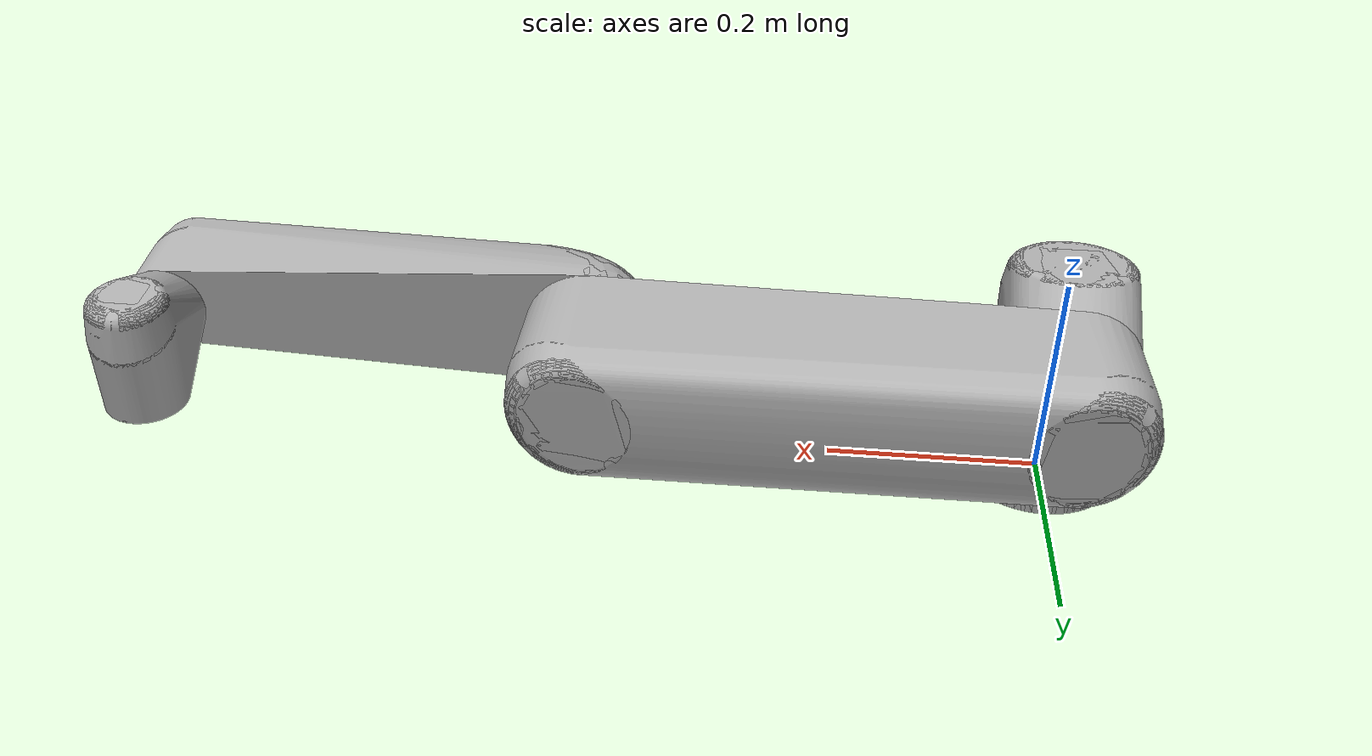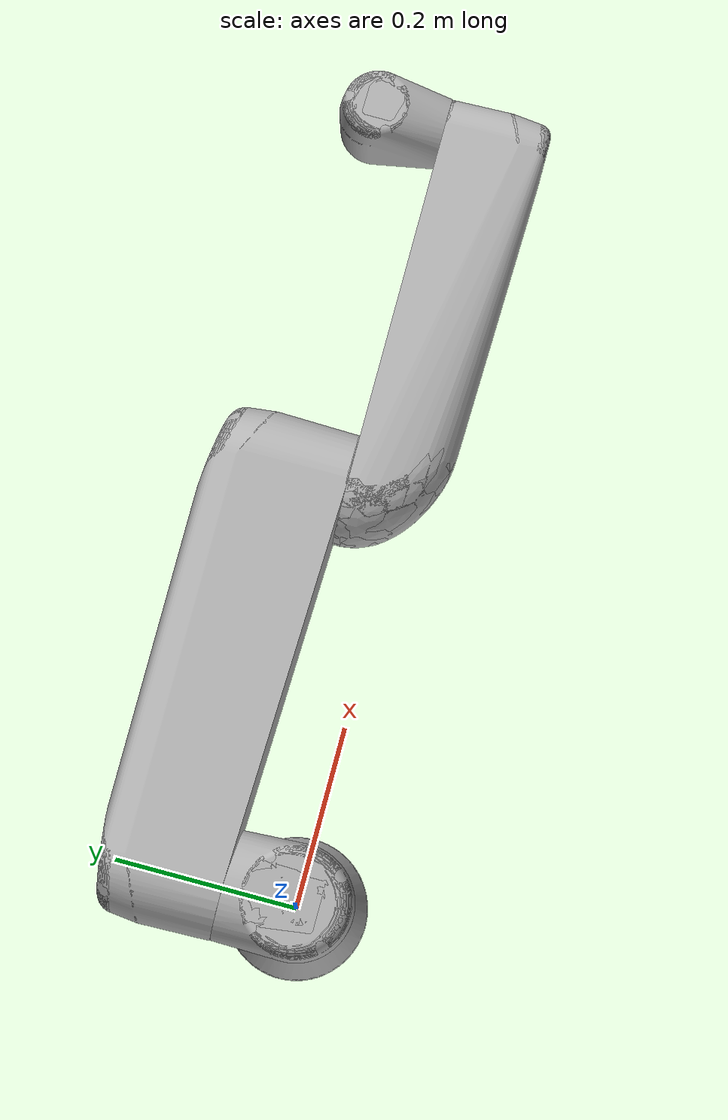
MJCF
<mujoco model="ur5e">
    <actuator>
        <!-- Physical limits of the actuator. -->
        <!-- Values taken from https://www.universal-robots.com/articles/ur-articles/max-joint-torques/ -->
        <motor ctrllimited="true" ctrlrange="-150.0 150.0" joint="shoulder_pan_joint" name="torq_j1"/>
        <motor ctrllimited="true" ctrlrange="-150.0 150.0" joint="shoulder_lift_joint" name="torq_j2"/>
        <motor ctrllimited="true" ctrlrange="-150.0 150.0" joint="elbow_joint" name="torq_j3"/>
        <motor ctrllimited="true" ctrlrange="-28.0 28.0" joint="wrist_1_joint" name="torq_j4"/>
    </actuator>
    <asset>
        <mesh name="base" file="meshes/base.stl" />
        <mesh name="shoulder" file="meshes/shoulder.stl" />
        <mesh name="upperarm" file="meshes/upperarm.stl" />
        <mesh name="forearm" file="meshes/forearm.stl" />
        <mesh name="wrist1" file="meshes/wrist1.stl" />

        <mesh name="base_vis" file="meshes/base_vis.stl" />
        <mesh name="shoulder_vis" file="meshes/shoulder_vis.stl" />
        <mesh name="upperarm_vis" file="meshes/upperarm_vis.stl" />
        <mesh name="forearm_vis" file="meshes/forearm_vis.stl" />
        <mesh name="wrist1_vis" file="meshes/wrist1_vis.stl" />
    </asset>
    <worldbody>
        <body name="base" pos="0 0 0">
            <!-- robot view -->
            <camera mode="fixed" name="robotview" pos="1.0 0 0.4" quat="0.653 0.271 0.271 0.653"/>
            <inertial diaginertia="0 0 0" mass="0" pos="0 0 0"/>
            <!-- mount attached here -->
            <geom type="mesh" contype="0" conaffinity="0" group="1" rgba="0.7 0.7 0.7 1" quat="0.707 0.707 0 0" mesh="base_vis" />
            <geom type="mesh" rgba="0.7 0.7 0.7 1" mesh="base" name="base_col"/>
            <body name="shoulder_link" pos="0 0 0.163">
                <inertial pos="0 0 0" mass="3.7" diaginertia="0.0102675 0.0102675 0.00666" />
                <joint name="shoulder_pan_joint" pos="0 0 0" axis="0 0 1" limited="true" range="-6.28319 6.28319" damping="0.001" frictionloss="0.01" />
                <geom type="mesh" contype="0" conaffinity="0" group="1" rgba="0.7 0.7 0.7 1" quat="0.707 0.707 0 0" mesh="shoulder_vis" name="shoulder_visual" />
                <geom type="mesh" rgba="0.7 0.7 0.7 1" mesh="shoulder" name="shoulder_col" />
                <body name="upper_arm_link" pos="0 0.138 0" quat="0.707107 0 0.707107 0">
                    <inertial pos="0 0 0.2125" mass="8.393" diaginertia="0.133886 0.133886 0.0151074" />
                    <joint name="shoulder_lift_joint" pos="0 0 0" axis="0 1 0" limited="true" range="-6.28319 6.28319" damping="0.001" frictionloss="0.01" />
                    <geom type="mesh" contype="0" conaffinity="0" group="1" rgba="0.7 0.7 0.7 1" quat="0.707 0.707 0 0" mesh="upperarm_vis" name="upperarm_visual" />
                    <geom type="mesh" rgba="0.7 0.7 0.7 1" mesh="upperarm" name="upperarm_col"/>
                    <body name="forearm_link" pos="0 -0.131 0.425">
                        <inertial pos="0 0 0.196" mass="2.275" diaginertia="0.0311796 0.0311796 0.004095" />
                        <joint name="elbow_joint" pos="0 0 0" axis="0 1 0" limited="true" range="-3.14159 3.14159" damping="0.001" frictionloss="0.01" />
                        <geom type="mesh" contype="0" conaffinity="0" group="1" rgba="0.7 0.7 0.7 1" quat="0.707 0.707 0 0" mesh="forearm_vis" name="forearm_visual" />
                        <geom type="mesh" rgba="0.7 0.7 0.7 1" mesh="forearm" name="forearm_col"/>
                        <body name="wrist_1_link" pos="0 0 0.392" quat="0.707107 0 0.707107 0">
                            <inertial pos="0 0.127 0" mass="1.219" diaginertia="0.0025599 0.0025599 0.0021942" />
                            <joint name="wrist_1_joint" pos="0 0 0" axis="0 1 0" limited="true" range="-6.28319 6.28319" damping="0.001" frictionloss="0.01" />
                            <geom type="mesh" contype="0" conaffinity="0" group="1" rgba="0.7 0.7 0.7 1" quat="0.707 0.707 0 0" mesh="wrist1_vis" name="wrist1_visual" />
                            <geom type="mesh" rgba="0.7 0.7 0.7 1" mesh="wrist1" name="wrist1_col" />
                            <body name="wrist_2_link" pos="0 0.127 0">
                                <body name="right_hand" pos="0 0 0"  quat="0.707 0 0 0" >
                                </body>
                            </body>
                        </body>
                    </body>
                </body>
            </body>
        </body>
    </worldbody>
</mujoco>
